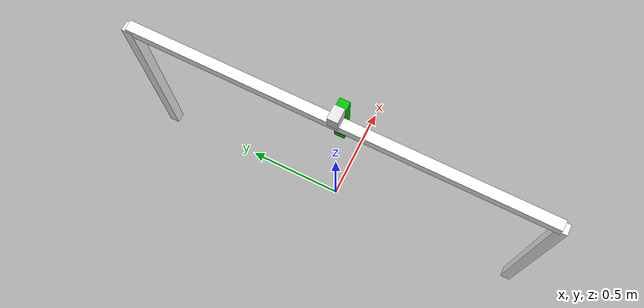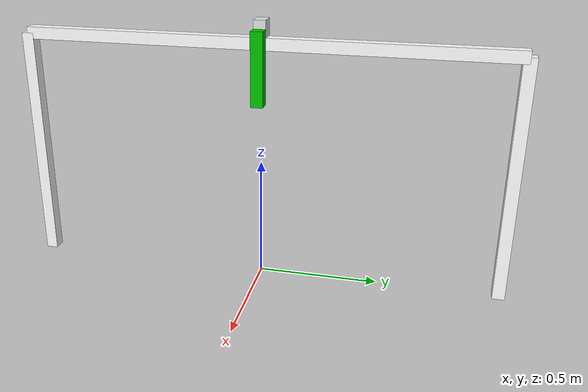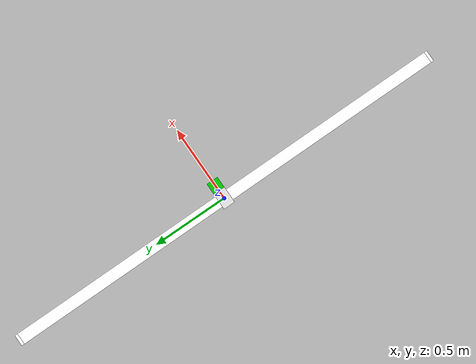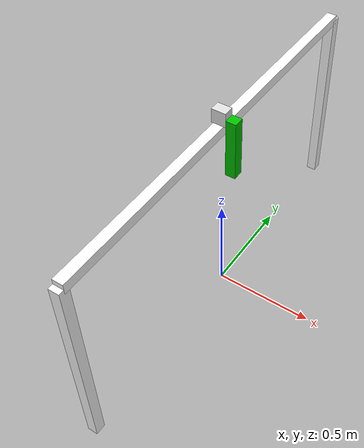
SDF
<?xml version = "1.0"?>
<sdf version='1.10'>
<world name="default">
  <model name='my_robot'>
    <!-- Gazebo plugins -->
      <plugin name="gazebo_ros_control" filename="libgazebo_ros_control.so">
        <robotNamespace>/</robotNamespace>
        <robotSimType>gazebo_ros_control/GazeboRosControlPlugin</robotSimType>
      </plugin>

      <plugin name="joint_state_publisher" filename="libgazebo_ros_joint_state_publisher.so">
        <robotNamespace>/</robotNamespace>
        <publishFrequency>50.0</publishFrequency>
      </plugin>

    <link name='base_link'>
      <inertial>
        <pose>0 0 0 0 0 0</pose>
        <mass>0.29999999999999999</mass>
        <inertia>
          <ixx>0.29999999999999999</ixx>
          <ixy>0</ixy>
          <ixz>0</ixz>
          <iyy>0.29999999999999999</iyy>
          <iyz>0</iyz>
          <izz>0.22500000000000001</izz>
        </inertia>
      </inertial>
      <visual name='base_link_visual'>
        <pose>0 0 1 1.5700000000000001 0 0</pose>
        <geometry>
          <box>
            <size>0.050000000000000003 0.050000000000000003 2</size>
          </box>
        </geometry>
        <material>
          <diffuse>1 1 1 1</diffuse>
          <ambient>1 1 1 1</ambient>
        </material>
      </visual>
      <visual name='base_link_fixed_joint_lump__left_rod_visual_1'>
        <pose>0 -1 0.5 0 0 0</pose>
        <geometry>
          <box>
            <size>0.050000000000000003 0.050000000000000003 1</size>
          </box>
        </geometry>
        <material>
          <diffuse>1 1 1 1</diffuse>
          <ambient>1 1 1 1</ambient>
        </material>
      </visual>
      <visual name='base_link_fixed_joint_lump__right_rod_visual_2'>
        <pose>0 1 0.5 0 0 0</pose>
        <geometry>
          <box>
            <size>0.050000000000000003 0.050000000000000003 1</size>
          </box>
        </geometry>
        <material>
          <diffuse>1 1 1 1</diffuse>
          <ambient>1 1 1 1</ambient>
        </material>
      </visual>
    </link>
    <joint name='central_piece_joint' type='prismatic'>
      <pose relative_to='base_link'>0 0 0 0 0 0</pose>
      <parent>base_link</parent>
      <child>central_piece</child>
      <axis>
        <xyz>0 1 0</xyz>
        <limit>
          <lower>-0.90000000000000002</lower>
          <upper>0.90000000000000002</upper>
          <effort>1000</effort>
          <velocity>0.5</velocity>
        </limit>
        <dynamics>
          <spring_reference>0</spring_reference>
          <spring_stiffness>0</spring_stiffness>
        </dynamics>
      </axis>
    </joint>
    <link name='central_piece'>
      <pose relative_to='central_piece_joint'>0 0 0 0 0 0</pose>
      <inertial>
        <pose>0 0 0 0 0 0</pose>
        <mass>0.10000000000000001</mass>
        <inertia>
          <ixx>0.10000000000000001</ixx>
          <ixy>0</ixy>
          <ixz>0</ixz>
          <iyy>0.10000000000000001</iyy>
          <iyz>0</iyz>
          <izz>0.074999999999999997</izz>
        </inertia>
      </inertial>
      <visual name='central_piece_visual'>
        <pose>0 0 1.0600000000000001 1.5700000000000001 0 0</pose>
        <geometry>
          <box>
            <size>0.070000000000000007 0.070000000000000007 0.050000000000000003</size>
          </box>
        </geometry>
        <material>
          <diffuse>0.875 0.875 0.875 1</diffuse>
          <ambient>0.875 0.875 0.875 1</ambient>
        </material>
      </visual>
    </link>
    <joint name='pendulum_joint' type='revolute'>
      <pose relative_to='central_piece'>0.059999999999999998 0 1.0600000000000001 0 0 0</pose>
      <parent>central_piece</parent>
      <child>pendulum</child>
      <axis>
        <xyz>1 0 0</xyz>
        <limit>
          <lower>-inf</lower>
          <upper>inf</upper>
        </limit>
        <dynamics>
          <spring_reference>0</spring_reference>
          <spring_stiffness>0</spring_stiffness>
        </dynamics>
      </axis>
    </joint>
    <link name='pendulum'>
      <pose relative_to='pendulum_joint'>0 0 0 0 0 0</pose>
      <inertial>
        <pose>0 0 0 0 0 0</pose>
        <mass>0.10000000000000001</mass>
        <inertia>
          <ixx>0.10000000000000001</ixx>
          <ixy>0</ixy>
          <ixz>0</ixz>
          <iyy>0.10000000000000001</iyy>
          <iyz>0</iyz>
          <izz>0.074999999999999997</izz>
        </inertia>
      </inertial>
      <visual name='pendulum_visual'>
        <pose>0 0 -0.14999999999999999 0 0 0</pose>
        <geometry>
          <box>
            <size>0.050000000000000003 0.050000000000000003 0.29999999999999999</size>
          </box>
        </geometry>
        <material>
          <diffuse>0 0.75000006 0 1</diffuse>
          <ambient>0 0.75000006 0 1</ambient>
        </material>
      </visual>
    </link>
    <frame name='left_rod_joint' attached_to='base_link'>
      <pose>0 0 0 0 0 0</pose>
    </frame>
    <frame name='left_rod' attached_to='left_rod_joint'>
      <pose>0 0 0 0 0 0</pose>
    </frame>
    <frame name='right_rod_joint' attached_to='base_link'>
      <pose>0 0 0 0 0 0</pose>
    </frame>
    <frame name='right_rod' attached_to='right_rod_joint'>
      <pose>0 0 0 0 0 0</pose>
    </frame>
    <joint name="fixed_joint" type="fixed">
        <parent>world</parent>
        <child>base_link</child>
        <pose>0 0 0 0 0 0</pose>
      </joint>
    <physics type='ode'>
      <max_step_size>0.001</max_step_size>
      <real_time_factor>1</real_time_factor>
      <real_time_update_rate>1000</real_time_update_rate>
      <solver>
        <type>quick</type>
        <iters>50</iters>
        <sor>1.3</sor>
      </solver>
      <constraints>
        <cfm>0.0</cfm>
        <erp>0.2</erp>
      </constraints>
    </physics>
  </model>
</world>
</sdf>
